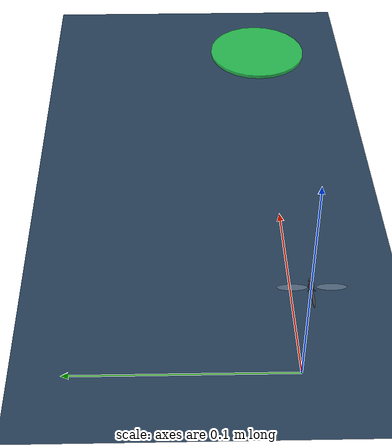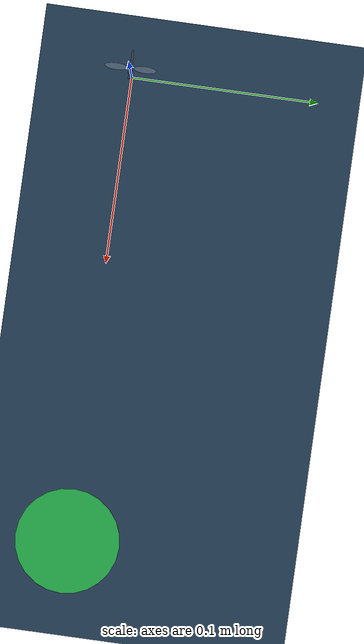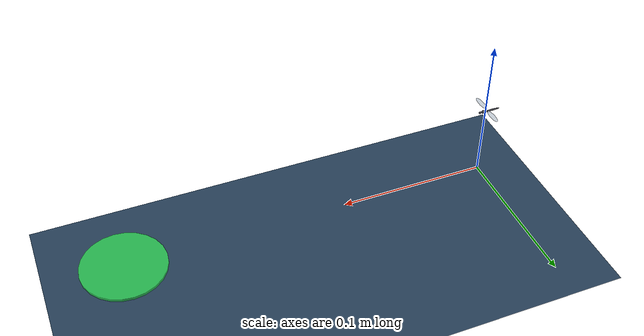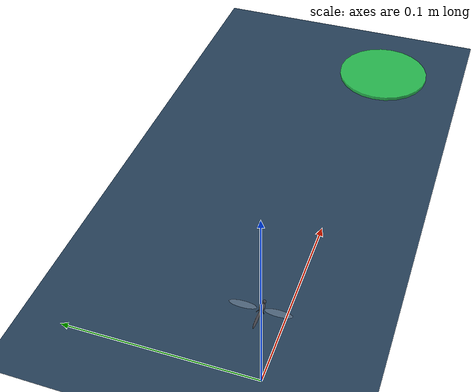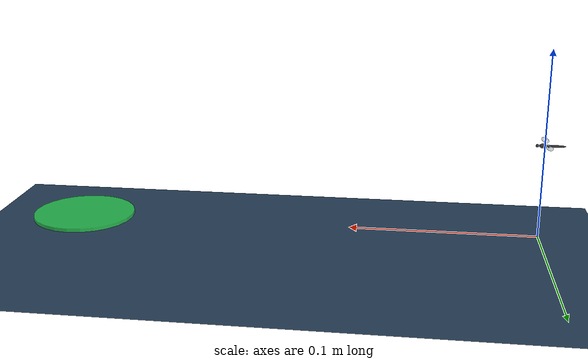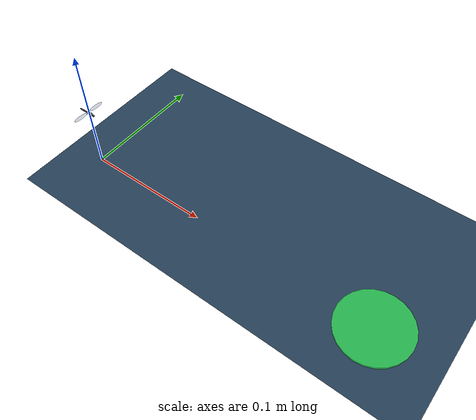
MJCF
<mujoco model="flapping_flyer">

  <option timestep="1e-4" gravity="0 0 -9.81" integrator="implicitfast"/>

  <!-- ===================== VISUALS (menagerie look) ===================== -->
  <visual>
    <headlight diffuse="0.6 0.6 0.6" ambient="0.3 0.3 0.3" specular="0 0 0"/>
    <rgba haze="0.15 0.25 0.35 1"/>
    <global azimuth="120" elevation="-20" offwidth="1280" offheight="960"/>
  </visual>

  <asset>
    <texture type="skybox" builtin="gradient" rgb1="0.3 0.5 0.7" rgb2="0 0 0"
             width="512" height="3072"/>
    <texture type="2d" name="groundplane" builtin="checker" mark="edge"
             rgb1="0.2 0.3 0.4" rgb2="0.1 0.2 0.3" markrgb="0.8 0.8 0.8"
             width="300" height="300"/>
    <material name="groundplane" texture="groundplane" texuniform="true"
              texrepeat="5 5" reflectance="0.2"/>
    <material name="thorax_mat" rgba="0.25 0.25 0.28 1"/>
    <material name="wing_mat"   rgba="0.55 0.62 0.70 0.45"/>
  </asset>

  <default>
    <joint damping="1e-8" armature="0"/>
    <geom density="1200"/>
  </default>

  <worldbody>
    <light pos="0 0 0.3" dir="0 0 -1" directional="true"
           diffuse="0.7 0.7 0.7"/>
    <geom name="floor" type="plane" size="0 0 0.01" material="groundplane"/>
    <geom name="bw0" type="box" pos="0.0000 0.0140 0.0400" size="0.0050 0.0050 0.0400" group="3" rgba="0.62 0.66 0.72 1" contype="0" conaffinity="0"/>
    <geom name="bw1" type="box" pos="0.0069 0.0140 0.0400" size="0.0050 0.0050 0.0400" group="3" rgba="0.62 0.66 0.72 1" contype="0" conaffinity="0"/>
    <geom name="bw2" type="box" pos="0.0139 0.0140 0.0400" size="0.0050 0.0050 0.0400" group="3" rgba="0.62 0.66 0.72 1" contype="0" conaffinity="0"/>
    <geom name="bw3" type="box" pos="0.0208 0.0140 0.0400" size="0.0050 0.0050 0.0400" group="3" rgba="0.62 0.66 0.72 1" contype="0" conaffinity="0"/>
    <geom name="bw4" type="box" pos="0.0278 0.0140 0.0400" size="0.0050 0.0050 0.0400" group="3" rgba="0.62 0.66 0.72 1" contype="0" conaffinity="0"/>
    <geom name="bw5" type="box" pos="0.0347 0.0140 0.0400" size="0.0050 0.0050 0.0400" group="3" rgba="0.62 0.66 0.72 1" contype="0" conaffinity="0"/>
    <geom name="bw6" type="box" pos="0.0417 0.0140 0.0400" size="0.0050 0.0050 0.0400" group="3" rgba="0.62 0.66 0.72 1" contype="0" conaffinity="0"/>
    <geom name="bw7" type="box" pos="0.0486 0.0140 0.0400" size="0.0050 0.0050 0.0400" group="3" rgba="0.62 0.66 0.72 1" contype="0" conaffinity="0"/>
    <geom name="bw8" type="box" pos="0.0556 0.0140 0.0400" size="0.0050 0.0050 0.0400" group="3" rgba="0.62 0.66 0.72 1" contype="0" conaffinity="0"/>
    <geom name="bw9" type="box" pos="0.0625 0.0140 0.0400" size="0.0050 0.0050 0.0400" group="3" rgba="0.62 0.66 0.72 1" contype="0" conaffinity="0"/>
    <geom name="bw10" type="box" pos="0.0694 0.0140 0.0400" size="0.0050 0.0050 0.0400" group="3" rgba="0.62 0.66 0.72 1" contype="0" conaffinity="0"/>
    <geom name="bw11" type="box" pos="0.0764 0.0140 0.0400" size="0.0050 0.0050 0.0400" group="3" rgba="0.62 0.66 0.72 1" contype="0" conaffinity="0"/>
    <geom name="bw12" type="box" pos="0.0833 0.0140 0.0400" size="0.0050 0.0050 0.0400" group="3" rgba="0.62 0.66 0.72 1" contype="0" conaffinity="0"/>
    <geom name="bw13" type="box" pos="0.0903 0.0140 0.0400" size="0.0050 0.0050 0.0400" group="3" rgba="0.62 0.66 0.72 1" contype="0" conaffinity="0"/>
    <geom name="bw14" type="box" pos="0.0972 0.0140 0.0400" size="0.0050 0.0050 0.0400" group="3" rgba="0.62 0.66 0.72 1" contype="0" conaffinity="0"/>
    <geom name="bw15" type="box" pos="0.1042 0.0140 0.0400" size="0.0050 0.0050 0.0400" group="3" rgba="0.62 0.66 0.72 1" contype="0" conaffinity="0"/>
    <geom name="bw16" type="box" pos="0.1111 0.0140 0.0400" size="0.0050 0.0050 0.0400" group="3" rgba="0.62 0.66 0.72 1" contype="0" conaffinity="0"/>
    <geom name="bw17" type="box" pos="0.1181 0.0140 0.0400" size="0.0050 0.0050 0.0400" group="3" rgba="0.62 0.66 0.72 1" contype="0" conaffinity="0"/>
    <geom name="bw18" type="box" pos="0.1250 0.0140 0.0400" size="0.0050 0.0050 0.0400" group="3" rgba="0.62 0.66 0.72 1" contype="0" conaffinity="0"/>
    <geom name="bw19" type="box" pos="0.1319 0.0140 0.0400" size="0.0050 0.0050 0.0400" group="3" rgba="0.62 0.66 0.72 1" contype="0" conaffinity="0"/>
    <geom name="bw20" type="box" pos="0.1389 0.0140 0.0400" size="0.0050 0.0050 0.0400" group="3" rgba="0.62 0.66 0.72 1" contype="0" conaffinity="0"/>
    <geom name="bw21" type="box" pos="0.1458 0.0140 0.0400" size="0.0050 0.0050 0.0400" group="3" rgba="0.62 0.66 0.72 1" contype="0" conaffinity="0"/>
    <geom name="bw22" type="box" pos="0.1528 0.0140 0.0400" size="0.0050 0.0050 0.0400" group="3" rgba="0.62 0.66 0.72 1" contype="0" conaffinity="0"/>
    <geom name="bw23" type="box" pos="0.1597 0.0140 0.0400" size="0.0050 0.0050 0.0400" group="3" rgba="0.62 0.66 0.72 1" contype="0" conaffinity="0"/>
    <geom name="bw24" type="box" pos="0.1667 0.0140 0.0400" size="0.0050 0.0050 0.0400" group="3" rgba="0.62 0.66 0.72 1" contype="0" conaffinity="0"/>
    <geom name="bw25" type="box" pos="0.1736 0.0140 0.0400" size="0.0050 0.0050 0.0400" group="3" rgba="0.62 0.66 0.72 1" contype="0" conaffinity="0"/>
    <geom name="bw26" type="box" pos="0.1806 0.0140 0.0400" size="0.0050 0.0050 0.0400" group="3" rgba="0.62 0.66 0.72 1" contype="0" conaffinity="0"/>
    <geom name="bw27" type="box" pos="0.1875 0.0140 0.0400" size="0.0050 0.0050 0.0400" group="3" rgba="0.62 0.66 0.72 1" contype="0" conaffinity="0"/>
    <geom name="bw28" type="box" pos="0.1944 0.0140 0.0400" size="0.0050 0.0050 0.0400" group="3" rgba="0.62 0.66 0.72 1" contype="0" conaffinity="0"/>
    <geom name="bw29" type="box" pos="0.2014 0.0140 0.0400" size="0.0050 0.0050 0.0400" group="3" rgba="0.62 0.66 0.72 1" contype="0" conaffinity="0"/>
    <geom name="bw30" type="box" pos="0.2083 0.0140 0.0400" size="0.0050 0.0050 0.0400" group="3" rgba="0.62 0.66 0.72 1" contype="0" conaffinity="0"/>
    <geom name="bw31" type="box" pos="0.2153 0.0140 0.0400" size="0.0050 0.0050 0.0400" group="3" rgba="0.62 0.66 0.72 1" contype="0" conaffinity="0"/>
    <geom name="bw32" type="box" pos="0.2222 0.0140 0.0400" size="0.0050 0.0050 0.0400" group="3" rgba="0.62 0.66 0.72 1" contype="0" conaffinity="0"/>
    <geom name="bw33" type="box" pos="0.2292 0.0140 0.0400" size="0.0050 0.0050 0.0400" group="3" rgba="0.62 0.66 0.72 1" contype="0" conaffinity="0"/>
    <geom name="bw34" type="box" pos="0.2361 0.0140 0.0400" size="0.0050 0.0050 0.0400" group="3" rgba="0.62 0.66 0.72 1" contype="0" conaffinity="0"/>
    <geom name="bw35" type="box" pos="0.2431 0.0140 0.0400" size="0.0050 0.0050 0.0400" group="3" rgba="0.62 0.66 0.72 1" contype="0" conaffinity="0"/>
    <geom name="bw36" type="box" pos="0.2500 0.0140 0.0400" size="0.0050 0.0050 0.0400" group="3" rgba="0.62 0.66 0.72 1" contype="0" conaffinity="0"/>
    <geom name="bw37" type="box" pos="0.0000 -0.0140 0.0400" size="0.0050 0.0050 0.0400" group="3" rgba="0.62 0.66 0.72 1" contype="0" conaffinity="0"/>
    <geom name="bw38" type="box" pos="0.0069 -0.0140 0.0400" size="0.0050 0.0050 0.0400" group="3" rgba="0.62 0.66 0.72 1" contype="0" conaffinity="0"/>
    <geom name="bw39" type="box" pos="0.0139 -0.0140 0.0400" size="0.0050 0.0050 0.0400" group="3" rgba="0.62 0.66 0.72 1" contype="0" conaffinity="0"/>
    <geom name="bw40" type="box" pos="0.0208 -0.0140 0.0400" size="0.0050 0.0050 0.0400" group="3" rgba="0.62 0.66 0.72 1" contype="0" conaffinity="0"/>
    <geom name="bw41" type="box" pos="0.0278 -0.0140 0.0400" size="0.0050 0.0050 0.0400" group="3" rgba="0.62 0.66 0.72 1" contype="0" conaffinity="0"/>
    <geom name="bw42" type="box" pos="0.0347 -0.0140 0.0400" size="0.0050 0.0050 0.0400" group="3" rgba="0.62 0.66 0.72 1" contype="0" conaffinity="0"/>
    <geom name="bw43" type="box" pos="0.0417 -0.0140 0.0400" size="0.0050 0.0050 0.0400" group="3" rgba="0.62 0.66 0.72 1" contype="0" conaffinity="0"/>
    <geom name="bw44" type="box" pos="0.0486 -0.0140 0.0400" size="0.0050 0.0050 0.0400" group="3" rgba="0.62 0.66 0.72 1" contype="0" conaffinity="0"/>
    <geom name="bw45" type="box" pos="0.0556 -0.0140 0.0400" size="0.0050 0.0050 0.0400" group="3" rgba="0.62 0.66 0.72 1" contype="0" conaffinity="0"/>
    <geom name="bw46" type="box" pos="0.0625 -0.0140 0.0400" size="0.0050 0.0050 0.0400" group="3" rgba="0.62 0.66 0.72 1" contype="0" conaffinity="0"/>
    <geom name="bw47" type="box" pos="0.0694 -0.0140 0.0400" size="0.0050 0.0050 0.0400" group="3" rgba="0.62 0.66 0.72 1" contype="0" conaffinity="0"/>
    <geom name="bw48" type="box" pos="0.0764 -0.0140 0.0400" size="0.0050 0.0050 0.0400" group="3" rgba="0.62 0.66 0.72 1" contype="0" conaffinity="0"/>
    <geom name="bw49" type="box" pos="0.0833 -0.0140 0.0400" size="0.0050 0.0050 0.0400" group="3" rgba="0.62 0.66 0.72 1" contype="0" conaffinity="0"/>
    <geom name="bw50" type="box" pos="0.0903 -0.0140 0.0400" size="0.0050 0.0050 0.0400" group="3" rgba="0.62 0.66 0.72 1" contype="0" conaffinity="0"/>
    <geom name="bw51" type="box" pos="0.0972 -0.0140 0.0400" size="0.0050 0.0050 0.0400" group="3" rgba="0.62 0.66 0.72 1" contype="0" conaffinity="0"/>
    <geom name="bw52" type="box" pos="0.1042 -0.0140 0.0400" size="0.0050 0.0050 0.0400" group="3" rgba="0.62 0.66 0.72 1" contype="0" conaffinity="0"/>
    <geom name="bw53" type="box" pos="0.1111 -0.0140 0.0400" size="0.0050 0.0050 0.0400" group="3" rgba="0.62 0.66 0.72 1" contype="0" conaffinity="0"/>
    <geom name="bw54" type="box" pos="0.1181 -0.0140 0.0400" size="0.0050 0.0050 0.0400" group="3" rgba="0.62 0.66 0.72 1" contype="0" conaffinity="0"/>
    <geom name="bw55" type="box" pos="0.1250 -0.0140 0.0400" size="0.0050 0.0050 0.0400" group="3" rgba="0.62 0.66 0.72 1" contype="0" conaffinity="0"/>
    <geom name="bw56" type="box" pos="0.1319 -0.0140 0.0400" size="0.0050 0.0050 0.0400" group="3" rgba="0.62 0.66 0.72 1" contype="0" conaffinity="0"/>
    <geom name="bw57" type="box" pos="0.1389 -0.0140 0.0400" size="0.0050 0.0050 0.0400" group="3" rgba="0.62 0.66 0.72 1" contype="0" conaffinity="0"/>
    <geom name="bw58" type="box" pos="0.1458 -0.0140 0.0400" size="0.0050 0.0050 0.0400" group="3" rgba="0.62 0.66 0.72 1" contype="0" conaffinity="0"/>
    <geom name="bw59" type="box" pos="0.1528 -0.0140 0.0400" size="0.0050 0.0050 0.0400" group="3" rgba="0.62 0.66 0.72 1" contype="0" conaffinity="0"/>
    <geom name="bw60" type="box" pos="0.1597 -0.0140 0.0400" size="0.0050 0.0050 0.0400" group="3" rgba="0.62 0.66 0.72 1" contype="0" conaffinity="0"/>
    <geom name="bw61" type="box" pos="0.1667 -0.0140 0.0400" size="0.0050 0.0050 0.0400" group="3" rgba="0.62 0.66 0.72 1" contype="0" conaffinity="0"/>
    <geom name="bw62" type="box" pos="0.1736 -0.0140 0.0400" size="0.0050 0.0050 0.0400" group="3" rgba="0.62 0.66 0.72 1" contype="0" conaffinity="0"/>
    <geom name="bw63" type="box" pos="0.1806 -0.0140 0.0400" size="0.0050 0.0050 0.0400" group="3" rgba="0.62 0.66 0.72 1" contype="0" conaffinity="0"/>
    <geom name="bw64" type="box" pos="0.1875 -0.0140 0.0400" size="0.0050 0.0050 0.0400" group="3" rgba="0.62 0.66 0.72 1" contype="0" conaffinity="0"/>
    <geom name="bw65" type="box" pos="0.1944 -0.0140 0.0400" size="0.0050 0.0050 0.0400" group="3" rgba="0.62 0.66 0.72 1" contype="0" conaffinity="0"/>
    <geom name="bw66" type="box" pos="0.2014 -0.0140 0.0400" size="0.0050 0.0050 0.0400" group="3" rgba="0.62 0.66 0.72 1" contype="0" conaffinity="0"/>
    <geom name="bw67" type="box" pos="0.2083 -0.0140 0.0400" size="0.0050 0.0050 0.0400" group="3" rgba="0.62 0.66 0.72 1" contype="0" conaffinity="0"/>
    <geom name="bw68" type="box" pos="0.2153 -0.0140 0.0400" size="0.0050 0.0050 0.0400" group="3" rgba="0.62 0.66 0.72 1" contype="0" conaffinity="0"/>
    <geom name="bw69" type="box" pos="0.2222 -0.0140 0.0400" size="0.0050 0.0050 0.0400" group="3" rgba="0.62 0.66 0.72 1" contype="0" conaffinity="0"/>
    <geom name="bw70" type="box" pos="0.2292 -0.0140 0.0400" size="0.0050 0.0050 0.0400" group="3" rgba="0.62 0.66 0.72 1" contype="0" conaffinity="0"/>
    <geom name="bw71" type="box" pos="0.2361 -0.0140 0.0400" size="0.0050 0.0050 0.0400" group="3" rgba="0.62 0.66 0.72 1" contype="0" conaffinity="0"/>
    <geom name="bw72" type="box" pos="0.2431 -0.0140 0.0400" size="0.0050 0.0050 0.0400" group="3" rgba="0.62 0.66 0.72 1" contype="0" conaffinity="0"/>
    <geom name="bw73" type="box" pos="0.2500 -0.0140 0.0400" size="0.0050 0.0050 0.0400" group="3" rgba="0.62 0.66 0.72 1" contype="0" conaffinity="0"/>
    <geom name="fin0" type="cylinder" pos="0.2500 0.0000 0.001" size="0.0280 0.001" rgba="0.2 0.85 0.35 0.85" group="2" contype="0" conaffinity="0"/>

    <body name="thorax" pos="0 0 0.05">

      <!-- main flight mass: thorax block, just below the wing hinges -->
      <geom name="thorax_g" type="ellipsoid" pos="0.001 0 0"
            size="0.0020 0.0012 0.0012" mass="60e-6" material="thorax_mat"/>
      <!-- head: small, forward -->
      <geom name="head_g" type="sphere" pos="0.0040 0 0"
            size="0.0008" mass="3e-6" material="thorax_mat"/>
      <!-- abdomen / tail: long, THIN, LIGHT, trailing aft. Tapered ellipsoid
           reads as an abdomen and gives a little aft area for pitch stability
           at almost no mass cost. -->
      <geom name="tail_g" type="ellipsoid" pos="-0.0055 0 0"
            size="0.0050 0.0006 0.0006" mass="12e-6" material="thorax_mat"/>

      <!-- halteres: tiny nubs just behind the wing bases. Visual now,
           EARMARKED as the future rate sensor. Mass ~0.1 mg each (negligible). -->
      <geom name="haltere_R" type="capsule" fromto="-0.0008 0.0007 0  -0.0016 0.0016 -0.0004"
            size="0.00012" mass="1e-7" material="thorax_mat"/>
      <geom name="haltere_L" type="capsule" fromto="-0.0008 -0.0007 0  -0.0016 -0.0016 -0.0004"
            size="0.00012" mass="1e-7" material="thorax_mat"/>

      <!-- ============ RIGHT WING (extends +y) ============
           shoulder above & right of the thorax centre -->
      <body name="stroke_R" pos="0 0.0010 0.0012">
        <joint name="stroke_R" type="hinge" axis="0 0 1" range="-90 90" armature="1e-8"/>
        <inertial pos="0 0 0" mass="1e-7" diaginertia="1e-13 1e-13 1e-13"/>
        <body name="wing_R" pos="0 0 0">
          <joint name="pitch_R" type="hinge" axis="0 1 0" range="-120 120" armature="1e-8"/>
          <geom name="wing_R_g" type="ellipsoid" pos="-0.000875 0.0066 0"
                size="0.00175 0.0060 0.000025" material="wing_mat"
                mass="1.0e-6"/>
        </body>
      </body>

      <!-- ============ LEFT WING (extends -y) ============ -->
      <body name="stroke_L" pos="0 -0.0010 0.0012">
        <joint name="stroke_L" type="hinge" axis="0 0 1" range="-90 90" armature="1e-8"/>
        <inertial pos="0 0 0" mass="1e-7" diaginertia="1e-13 1e-13 1e-13"/>
        <body name="wing_L" pos="0 0 0">
          <joint name="pitch_L" type="hinge" axis="0 1 0" range="-120 120" armature="1e-8"/>
          <geom name="wing_L_g" type="ellipsoid" pos="-0.000875 -0.0066 0"
                size="0.00175 0.0060 0.000025" material="wing_mat"
                mass="1.0e-6"/>
        </body>
      </body>
    </body>
  </worldbody>

  <!-- Position actuators on the four hinges. Gains kept gentle so they are
       stable under implicitfast; Stage 2 may instead PRESCRIBE kinematics. -->
  <actuator>
    <position name="a_stroke_R" joint="stroke_R" kp="0.01" kv="1e-5"/>
    <position name="a_pitch_R"  joint="pitch_R"  kp="0.01" kv="1e-5"/>
    <position name="a_stroke_L" joint="stroke_L" kp="0.01" kv="1e-5"/>
    <position name="a_pitch_L"  joint="pitch_L"  kp="0.01" kv="1e-5"/>
  </actuator>
</mujoco>
